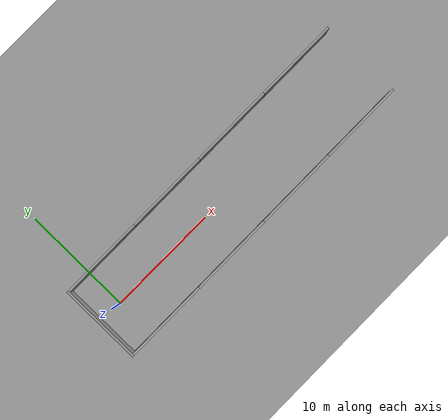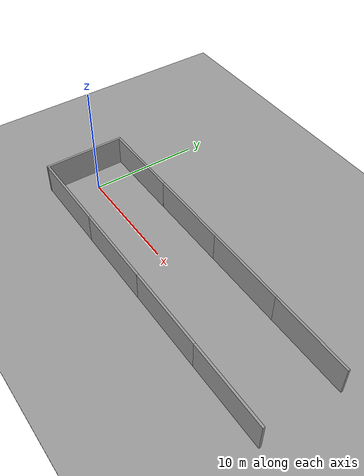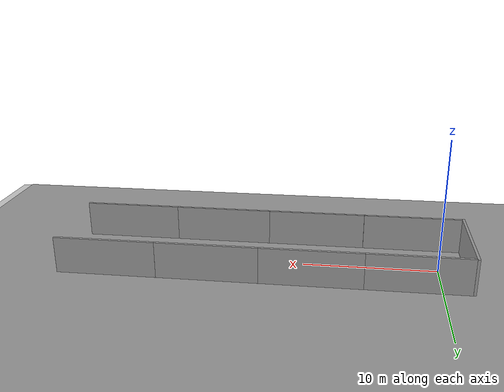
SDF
<sdf version="1.6">
 <world name="default">
  <light name="sun" type="directional">
   <pose>0 0 10 0 -0 0</pose>
   <diffuse>0.8 0.8 0.8 1</diffuse>
   <specular>0.1 0.1 0.1 1</specular>
   <attenuation>
    <range>1000</range>
    <constant>0.9</constant>
    <linear>0.01</linear>
    <quadratic>0.001</quadratic>
   </attenuation>
   <direction>-0.5 0.5 -1</direction>
  </light>
  <model name="ground_plane">
   <static>1</static>
   <link name="link">
    <collision name="collision">
     <geometry><plane><normal>0 0 1</normal><size>100 100</size></plane></geometry>
     <surface><friction><ode><mu>100</mu><mu2>50</mu2></ode></friction></surface>
    </collision>
    <visual name="visual">
     <cast_shadows>0</cast_shadows>
     <geometry><plane><normal>0 0 1</normal><size>100 100</size></plane></geometry>
     <material>
      <script><uri>file://media/materials/scripts/gazebo.material</uri><name>Gazebo/Grey</name></script>
     </material>
    </visual>
   </link>
  </model>
  <gravity>0 0 -9.8</gravity>
  <magnetic_field>6e-06 2.3e-05 -4.2e-05</magnetic_field>
  <atmosphere type="adiabatic"/>
  <physics name="default_physics" default="0" type="ode">
   <max_step_size>0.001</max_step_size>
   <real_time_factor>1</real_time_factor>
   <real_time_update_rate>1000</real_time_update_rate>
  </physics>
  <scene><ambient>0.4 0.4 0.4 1</ambient><background>0.7 0.7 0.7 1</background><shadows>1</shadows></scene>
  <spherical_coordinates>
   <surface_model>EARTH_WGS84</surface_model>
   <latitude_deg>0</latitude_deg>
   <longitude_deg>0</longitude_deg>
   <elevation>0</elevation>
   <heading_deg>0</heading_deg>
  </spherical_coordinates>
  <model name="grey_wall">
   <static>1</static>
   <link name="link">
    <pose>0 0 1.4 0 -0 0</pose>
    <collision name="collision"><geometry><box><size>7.5 0.2 2.8</size></box></geometry></collision>
    <visual name="visual">
     <cast_shadows>0</cast_shadows>
     <geometry><box><size>7.5 0.2 2.8</size></box></geometry>
     <material>
      <script>
       <uri>model://grey_wall/materials/scripts</uri>
       <uri>model://grey_wall/materials/textures</uri>
       <name>vrc/grey_wall</name>
      </script>
     </material>
    </visual>
   </link>
   <pose>1.74277 3.59908 0 0 -0 0</pose>
  </model>
  <model name="grey_wall_0">
   <static>1</static>
   <link name="link">
    <pose>0 0 1.4 0 -0 0</pose>
    <collision name="collision"><geometry><box><size>7.5 0.2 2.8</size></box></geometry></collision>
    <visual name="visual">
     <cast_shadows>0</cast_shadows>
     <geometry><box><size>7.5 0.2 2.8</size></box></geometry>
     <material>
      <script>
       <uri>model://grey_wall/materials/scripts</uri>
       <uri>model://grey_wall/materials/textures</uri>
       <name>vrc/grey_wall</name>
      </script>
     </material>
    </visual>
   </link>
   <pose>1.7816 -3.68174 0 0 -0 0</pose>
  </model>
  <model name="ground_plane_0">
   <static>1</static>
   <link name="link">
    <collision name="collision">
     <geometry><plane><normal>0 0 1</normal><size>100 100</size></plane></geometry>
     <surface><friction><ode><mu>100</mu><mu2>50</mu2></ode></friction></surface>
    </collision>
    <visual name="visual">
     <cast_shadows>0</cast_shadows>
     <geometry><plane><normal>0 0 1</normal><size>100 100</size></plane></geometry>
     <material>
      <script><uri>file://media/materials/scripts/gazebo.material</uri><name>Gazebo/Grey</name></script>
     </material>
    </visual>
   </link>
   <pose>-11.2455 -1.12521 0 0 -0 0</pose>
  </model>
  <model name="grey_wall_4">
   <static>1</static>
   <link name="link">
    <pose>0 0 1.4 0 -0 0</pose>
    <collision name="collision"><geometry><box><size>7.5 0.2 2.8</size></box></geometry></collision>
    <visual name="visual">
     <cast_shadows>0</cast_shadows>
     <geometry><box><size>7.5 0.2 2.8</size></box></geometry>
     <material>
      <script>
       <uri>model://grey_wall/materials/scripts</uri>
       <uri>model://grey_wall/materials/textures</uri>
       <name>vrc/grey_wall</name>
      </script>
     </material>
    </visual>
   </link>
   <pose>9.23902 3.60144 0 0 -0 0</pose>
  </model>
  <model name="grey_wall_5">
   <static>1</static>
   <link name="link">
    <pose>0 0 1.4 0 -0 0</pose>
    <collision name="collision"><geometry><box><size>7.5 0.2 2.8</size></box></geometry></collision>
    <visual name="visual">
     <cast_shadows>0</cast_shadows>
     <geometry><box><size>7.5 0.2 2.8</size></box></geometry>
     <material>
      <script>
       <uri>model://grey_wall/materials/scripts</uri>
       <uri>model://grey_wall/materials/textures</uri>
       <name>vrc/grey_wall</name>
      </script>
     </material>
    </visual>
   </link>
   <pose>9.29035 -3.69084 0 0 -0 0</pose>
  </model>
  <model name="grey_wall_6">
   <static>1</static>
   <link name="link">
    <pose>0 0 1.4 0 -0 0</pose>
    <collision name="collision"><geometry><box><size>7.5 0.2 2.8</size></box></geometry></collision>
    <visual name="visual">
     <cast_shadows>0</cast_shadows>
     <geometry><box><size>7.5 0.2 2.8</size></box></geometry>
     <material>
      <script>
       <uri>model://grey_wall/materials/scripts</uri>
       <uri>model://grey_wall/materials/textures</uri>
       <name>vrc/grey_wall</name>
      </script>
     </material>
    </visual>
   </link>
   <pose>16.7372 3.60255 0 0 -0 0</pose>
  </model>
  <model name="grey_wall_7">
   <static>1</static>
   <link name="link">
    <pose>0 0 1.4 0 -0 0</pose>
    <collision name="collision"><geometry><box><size>7.5 0.2 2.8</size></box></geometry></collision>
    <visual name="visual">
     <cast_shadows>0</cast_shadows>
     <geometry><box><size>7.5 0.2 2.8</size></box></geometry>
     <material>
      <script>
       <uri>model://grey_wall/materials/scripts</uri>
       <uri>model://grey_wall/materials/textures</uri>
       <name>vrc/grey_wall</name>
      </script>
     </material>
    </visual>
   </link>
   <pose>16.7822 -3.69163 0 0 -0 0</pose>
  </model>
  <model name="grey_wall_8">
   <static>1</static>
   <link name="link">
    <pose>0 0 1.4 0 -0 0</pose>
    <collision name="collision"><geometry><box><size>7.5 0.2 2.8</size></box></geometry></collision>
    <visual name="visual">
     <cast_shadows>0</cast_shadows>
     <geometry><box><size>7.5 0.2 2.8</size></box></geometry>
     <material>
      <script>
       <uri>model://grey_wall/materials/scripts</uri>
       <uri>model://grey_wall/materials/textures</uri>
       <name>vrc/grey_wall</name>
      </script>
     </material>
    </visual>
   </link>
   <pose>24.2326 3.60388 0 0 -0 0</pose>
  </model>
  <model name="grey_wall_9">
   <static>1</static>
   <link name="link">
    <pose>0 0 1.4 0 -0 0</pose>
    <collision name="collision"><geometry><box><size>7.5 0.2 2.8</size></box></geometry></collision>
    <visual name="visual">
     <cast_shadows>0</cast_shadows>
     <geometry><box><size>7.5 0.2 2.8</size></box></geometry>
     <material>
      <script>
       <uri>model://grey_wall/materials/scripts</uri>
       <uri>model://grey_wall/materials/textures</uri>
       <name>vrc/grey_wall</name>
      </script>
     </material>
    </visual>
   </link>
   <pose>-2.0788 -0.039101 0 0 0 -1.56563</pose>
  </model>
  <model name="grey_wall_10">
   <static>1</static>
   <link name="link">
    <pose>0 0 1.4 0 -0 0</pose>
    <collision name="collision"><geometry><box><size>7.5 0.2 2.8</size></box></geometry></collision>
    <visual name="visual">
     <cast_shadows>0</cast_shadows>
     <geometry><box><size>7.5 0.2 2.8</size></box></geometry>
     <material>
      <script>
       <uri>model://grey_wall/materials/scripts</uri>
       <uri>model://grey_wall/materials/textures</uri>
       <name>vrc/grey_wall</name>
      </script>
     </material>
    </visual>
   </link>
   <pose>24.2783 -3.69182 0 0 -0 0</pose>
  </model>
 </world>
</sdf>
